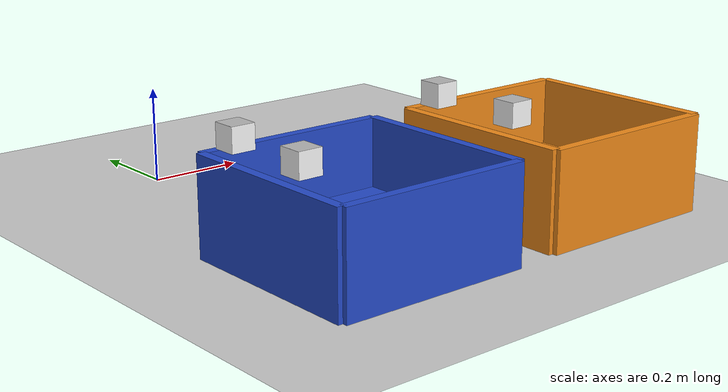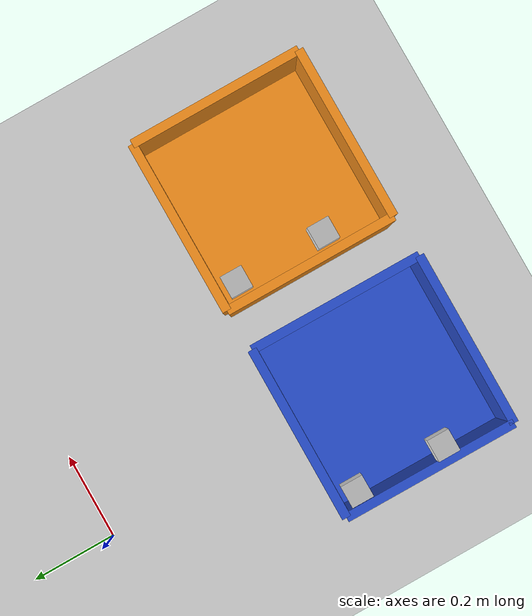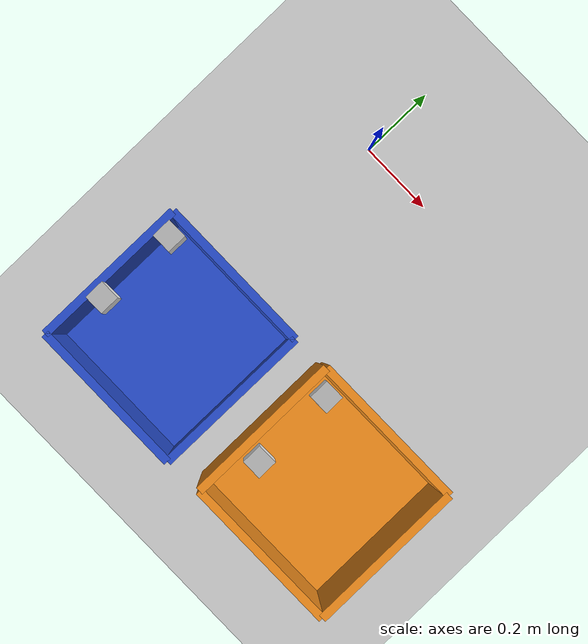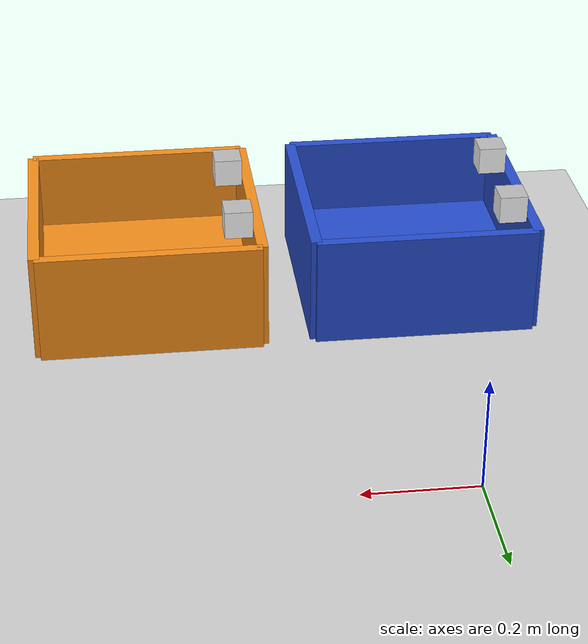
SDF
<sdf version="1.7">
 <world name="default">
  <light name="sun" type="directional">
   <pose>0 0 10 0 -0 0</pose>
   <diffuse>0.8 0.8 0.8 1</diffuse>
   <specular>0.2 0.2 0.2 1</specular>
   <attenuation>
    <range>1000</range>
    <constant>0.9</constant>
    <linear>0.01</linear>
    <quadratic>0.001</quadratic>
   </attenuation>
   <direction>-0.5 0.1 -0.9</direction>
   <spot><inner_angle>0</inner_angle><outer_angle>0</outer_angle><falloff>0</falloff></spot>
  </light>
  <model name="ground_plane">
   <static>1</static>
   <link name="link">
    <collision name="collision">
     <geometry><plane><normal>0 0 1</normal><size>100 100</size></plane></geometry>
     <surface><friction><ode><mu>100</mu><mu2>50</mu2></ode></friction></surface>
    </collision>
    <visual name="visual">
     <cast_shadows>0</cast_shadows>
     <geometry><plane><normal>0 0 1</normal><size>100 100</size></plane></geometry>
     <material>
      <script><uri>file://media/materials/scripts/gazebo.material</uri><name>Gazebo/Grey</name></script>
     </material>
    </visual>
   </link>
  </model>
  <gravity>0 0 -9.8</gravity>
  <magnetic_field>6e-06 2.3e-05 -4.2e-05</magnetic_field>
  <atmosphere type="adiabatic"/>
  <physics type="ode">
   <max_step_size>0.001</max_step_size>
   <real_time_factor>1</real_time_factor>
   <real_time_update_rate>1000</real_time_update_rate>
  </physics>
  <scene><ambient>0.4 0.4 0.4 1</ambient><background>0.7 0.7 0.7 1</background><shadows>1</shadows></scene>
  <audio><device>default</device></audio>
  <spherical_coordinates>
   <surface_model>EARTH_WGS84</surface_model>
   <latitude_deg>0</latitude_deg>
   <longitude_deg>0</longitude_deg>
   <elevation>0</elevation>
   <heading_deg>0</heading_deg>
  </spherical_coordinates>
  <model name="ur5_bin">
   <link name="bottom">
    <collision name="collision"><geometry><box><size>0.4 0.4 0.02</size></box></geometry></collision>
    <visual name="visual">
     <geometry><box><size>0.4 0.4 0.02</size></box></geometry>
     <material>
      <script><uri>file://media/materials/scripts/gazebo.material</uri><name>Gazebo/Blue</name></script>
     </material>
    </visual>
    <inertial>
     <mass>0.05</mass>
     <inertia><ixx>0.001</ixx><ixy>0</ixy><ixz>0</ixz><iyy>0.001</iyy><iyz>0</iyz><izz>0.001</izz></inertia>
    </inertial>
   </link>
   <link name="left">
    <pose>-0.2 0 0.05 0 -0 0</pose>
    <collision name="collision"><geometry><box><size>0.02 0.4 0.2</size></box></geometry></collision>
    <visual name="visual">
     <geometry><box><size>0.02 0.4 0.2</size></box></geometry>
     <material>
      <script><uri>file://media/materials/scripts/gazebo.material</uri><name>Gazebo/Blue</name></script>
     </material>
    </visual>
    <inertial>
     <mass>0.05</mass>
     <inertia><ixx>0.001</ixx><ixy>0</ixy><ixz>0</ixz><iyy>0.001</iyy><iyz>0</iyz><izz>0.001</izz></inertia>
    </inertial>
   </link>
   <link name="right">
    <pose>0.2 0 0.05 0 -0 0</pose>
    <collision name="collision"><geometry><box><size>0.02 0.4 0.2</size></box></geometry></collision>
    <visual name="visual">
     <geometry><box><size>0.02 0.4 0.2</size></box></geometry>
     <material>
      <script><uri>file://media/materials/scripts/gazebo.material</uri><name>Gazebo/Blue</name></script>
     </material>
    </visual>
    <inertial>
     <mass>0.05</mass>
     <inertia><ixx>0.001</ixx><ixy>0</ixy><ixz>0</ixz><iyy>0.001</iyy><iyz>0</iyz><izz>0.001</izz></inertia>
    </inertial>
   </link>
   <link name="back">
    <pose>0 0.2 0.05 0 -0 0</pose>
    <collision name="collision"><geometry><box><size>0.4 0.02 0.2</size></box></geometry></collision>
    <visual name="visual">
     <geometry><box><size>0.4 0.02 0.2</size></box></geometry>
     <material>
      <script><uri>file://media/materials/scripts/gazebo.material</uri><name>Gazebo/Blue</name></script>
     </material>
    </visual>
    <inertial>
     <mass>0.05</mass>
     <inertia><ixx>0.001</ixx><ixy>0</ixy><ixz>0</ixz><iyy>0.001</iyy><iyz>0</iyz><izz>0.001</izz></inertia>
    </inertial>
   </link>
   <link name="front">
    <pose>0 -0.2 0.05 0 -0 0</pose>
    <collision name="collision"><geometry><box><size>0.4 0.02 0.2</size></box></geometry></collision>
    <visual name="visual">
     <geometry><box><size>0.4 0.02 0.2</size></box></geometry>
     <material>
      <script><uri>file://media/materials/scripts/gazebo.material</uri><name>Gazebo/Blue</name></script>
     </material>
    </visual>
    <inertial>
     <mass>0.05</mass>
     <inertia><ixx>0.001</ixx><ixy>0</ixy><ixz>0</ixz><iyy>0.001</iyy><iyz>0</iyz><izz>0.001</izz></inertia>
    </inertial>
   </link>
   <joint name="left_wall" type="fixed"><parent>bottom</parent><child>left</child></joint>
   <joint name="right_wall" type="fixed"><parent>bottom</parent><child>right</child></joint>
   <joint name="back_wall" type="fixed"><parent>bottom</parent><child>back</child></joint>
   <joint name="front_wall" type="fixed"><parent>bottom</parent><child>front</child></joint>
   <pose>0.005516 -0.673696 0.05 -2e-06 2e-06 -0.004352</pose>
  </model>
  <model name="my_model_1">
   <pose>-0.149691 -0.518378 0.23246 -2e-06 -5.4e-05 8e-06</pose>
   <static>0</static>
   <link name="link">
    <inertial>
     <mass>1</mass>
     <inertia><ixx>0.083</ixx><ixy>0</ixy><ixz>0</ixz><iyy>0.083</iyy><iyz>0</iyz><izz>0.083</izz></inertia>
    </inertial>
    <collision name="collision"><geometry><box><size>0.05 0.05 0.05</size></box></geometry></collision>
    <visual name="visual">
     <geometry><box><size>0.05 0.05 0.05</size></box></geometry>
     <material>
      <ambient>1 1 1 1</ambient>
      <diffuse>1 1 1 1</diffuse>
      <specular>0 0 0 1</specular>
      <emissive>0 0 0 1</emissive>
     </material>
    </visual>
    <visual name="aruco_mark">
     <pose>0 0 0.0252 0 -0 1.5708</pose>
     <cast_shadows>0</cast_shadows>
     <geometry><box><size>0.05 0.05 1e-06</size></box></geometry>
     <material>
      <script>
       <uri>model://the_cube/materials/scripts</uri>
       <uri>model://the_cube/materials/textures/</uri>
       <name>aruco_mark_0/Image</name>
      </script>
     </material>
    </visual>
   </link>
  </model>
  <model name="my_model_2">
   <pose>-0.155178 -0.717457 0.231865 0 -1.5e-05 -1.2e-05</pose>
   <static>0</static>
   <link name="link">
    <inertial>
     <mass>1</mass>
     <inertia><ixx>0.083</ixx><ixy>0</ixy><ixz>0</ixz><iyy>0.083</iyy><iyz>0</iyz><izz>0.083</izz></inertia>
    </inertial>
    <collision name="collision"><geometry><box><size>0.05 0.05 0.05</size></box></geometry></collision>
    <visual name="visual">
     <geometry><box><size>0.05 0.05 0.05</size></box></geometry>
     <material>
      <ambient>1 1 1 1</ambient>
      <diffuse>1 1 1 1</diffuse>
      <specular>0 0 0 1</specular>
      <emissive>0 0 0 1</emissive>
     </material>
    </visual>
    <visual name="aruco_mark1">
     <pose>0 0 0.0252 0 -0 1.5708</pose>
     <cast_shadows>0</cast_shadows>
     <geometry><box><size>0.05 0.05 1e-06</size></box></geometry>
     <material>
      <script>
       <uri>model://the_cube_1/materials/scripts</uri>
       <uri>model://the_cube_1/materials/textures/</uri>
       <name>aruco_mark_1/Image</name>
      </script>
     </material>
    </visual>
   </link>
  </model>
  <model name="my_model_3">
   <pose>0.342315 -0.515696 0.233519 1.2e-05 -0.000102 -1.1e-05</pose>
   <static>0</static>
   <link name="link">
    <inertial>
     <mass>1</mass>
     <inertia><ixx>0.083</ixx><ixy>0</ixy><ixz>0</ixz><iyy>0.083</iyy><iyz>0</iyz><izz>0.083</izz></inertia>
    </inertial>
    <collision name="collision"><geometry><box><size>0.05 0.05 0.05</size></box></geometry></collision>
    <visual name="visual">
     <geometry><box><size>0.05 0.05 0.05</size></box></geometry>
     <material>
      <ambient>1 1 1 1</ambient>
      <diffuse>1 1 1 1</diffuse>
      <specular>0 0 0 1</specular>
      <emissive>0 0 0 1</emissive>
     </material>
    </visual>
    <visual name="aruco_mark1">
     <pose>0 0 0.0252 0 -0 1.5708</pose>
     <cast_shadows>0</cast_shadows>
     <geometry><box><size>0.05 0.05 1e-06</size></box></geometry>
     <material>
      <script>
       <uri>model://the_cube_2/materials/scripts</uri>
       <uri>model://the_cube_2/materials/textures/</uri>
       <name>aruco_mark_2/Image</name>
      </script>
     </material>
    </visual>
   </link>
  </model>
  <model name="my_model_4">
   <pose>0.341825 -0.719323 0.233998 -4e-06 -3e-06 -3e-06</pose>
   <static>0</static>
   <link name="link">
    <inertial>
     <mass>1</mass>
     <inertia><ixx>0.083</ixx><ixy>0</ixy><ixz>0</ixz><iyy>0.083</iyy><iyz>0</iyz><izz>0.083</izz></inertia>
    </inertial>
    <collision name="collision"><geometry><box><size>0.05 0.05 0.05</size></box></geometry></collision>
    <visual name="visual">
     <geometry><box><size>0.05 0.05 0.05</size></box></geometry>
     <material>
      <ambient>1 1 1 1</ambient>
      <diffuse>1 1 1 1</diffuse>
      <specular>0 0 0 1</specular>
      <emissive>0 0 0 1</emissive>
     </material>
    </visual>
    <visual name="aruco_mark1">
     <pose>0 0 0.0252 0 -0 1.5708</pose>
     <cast_shadows>0</cast_shadows>
     <geometry><box><size>0.05 0.05 1e-06</size></box></geometry>
     <material>
      <script>
       <uri>model://the_cube_3/materials/scripts</uri>
       <uri>model://the_cube_3/materials/textures/</uri>
       <name>aruco_mark_5/Image</name>
      </script>
     </material>
    </visual>
   </link>
  </model>
  <model name="ur5_bin_2">
   <link name="bottom">
    <collision name="collision"><geometry><box><size>0.4 0.4 0.02</size></box></geometry></collision>
    <visual name="visual">
     <geometry><box><size>0.4 0.4 0.02</size></box></geometry>
     <material>
      <script><uri>file://media/materials/scripts/gazebo.material</uri><name>Gazebo/Orange</name></script>
     </material>
    </visual>
    <inertial>
     <mass>0.05</mass>
     <inertia><ixx>0.001</ixx><ixy>0</ixy><ixz>0</ixz><iyy>0.001</iyy><iyz>0</iyz><izz>0.001</izz></inertia>
    </inertial>
   </link>
   <link name="left">
    <pose>-0.2 0 0.05 0 -0 0</pose>
    <collision name="collision"><geometry><box><size>0.02 0.4 0.2</size></box></geometry></collision>
    <visual name="visual">
     <geometry><box><size>0.02 0.4 0.2</size></box></geometry>
     <material>
      <script><uri>file://media/materials/scripts/gazebo.material</uri><name>Gazebo/Orange</name></script>
     </material>
    </visual>
    <inertial>
     <mass>0.05</mass>
     <inertia><ixx>0.001</ixx><ixy>0</ixy><ixz>0</ixz><iyy>0.001</iyy><iyz>0</iyz><izz>0.001</izz></inertia>
    </inertial>
   </link>
   <link name="right">
    <pose>0.2 0 0.05 0 -0 0</pose>
    <collision name="collision"><geometry><box><size>0.02 0.4 0.2</size></box></geometry></collision>
    <visual name="visual">
     <geometry><box><size>0.02 0.4 0.2</size></box></geometry>
     <material>
      <script><uri>file://media/materials/scripts/gazebo.material</uri><name>Gazebo/Orange</name></script>
     </material>
    </visual>
    <inertial>
     <mass>0.05</mass>
     <inertia><ixx>0.001</ixx><ixy>0</ixy><ixz>0</ixz><iyy>0.001</iyy><iyz>0</iyz><izz>0.001</izz></inertia>
    </inertial>
   </link>
   <link name="back">
    <pose>0 0.2 0.05 0 -0 0</pose>
    <collision name="collision"><geometry><box><size>0.4 0.02 0.2</size></box></geometry></collision>
    <visual name="visual">
     <geometry><box><size>0.4 0.02 0.2</size></box></geometry>
     <material>
      <script><uri>file://media/materials/scripts/gazebo.material</uri><name>Gazebo/Orange</name></script>
     </material>
    </visual>
    <inertial>
     <mass>0.05</mass>
     <inertia><ixx>0.001</ixx><ixy>0</ixy><ixz>0</ixz><iyy>0.001</iyy><iyz>0</iyz><izz>0.001</izz></inertia>
    </inertial>
   </link>
   <link name="front">
    <pose>0 -0.2 0.05 0 -0 0</pose>
    <collision name="collision"><geometry><box><size>0.4 0.02 0.2</size></box></geometry></collision>
    <visual name="visual">
     <geometry><box><size>0.4 0.02 0.2</size></box></geometry>
     <material>
      <script><uri>file://media/materials/scripts/gazebo.material</uri><name>Gazebo/Orange</name></script>
     </material>
    </visual>
    <inertial>
     <mass>0.05</mass>
     <inertia><ixx>0.001</ixx><ixy>0</ixy><ixz>0</ixz><iyy>0.001</iyy><iyz>0</iyz><izz>0.001</izz></inertia>
    </inertial>
   </link>
   <joint name="left_wall" type="fixed"><parent>bottom</parent><child>left</child></joint>
   <joint name="right_wall" type="fixed"><parent>bottom</parent><child>right</child></joint>
   <joint name="back_wall" type="fixed"><parent>bottom</parent><child>back</child></joint>
   <joint name="front_wall" type="fixed"><parent>bottom</parent><child>front</child></joint>
   <pose>0.502543 -0.669034 0.05 0 -0 1.1e-05</pose>
  </model>
 </world>
</sdf>
